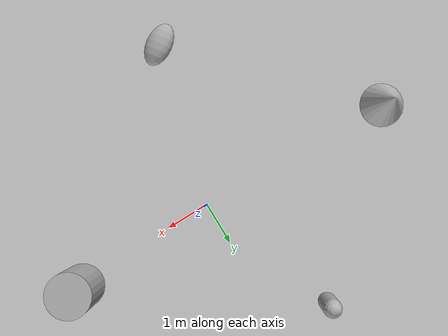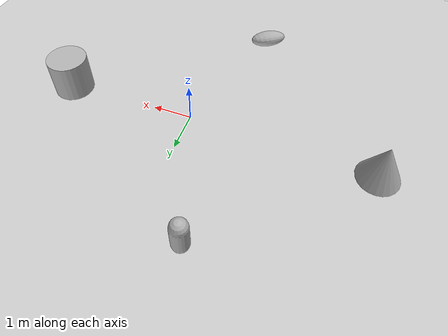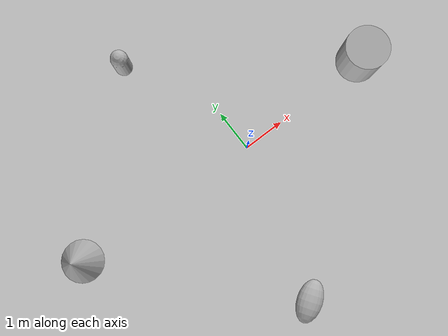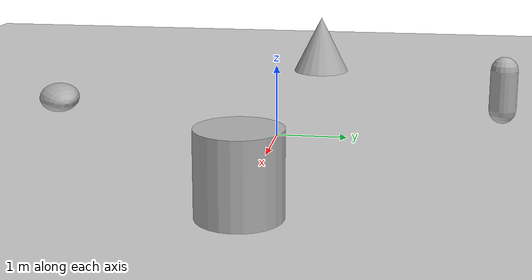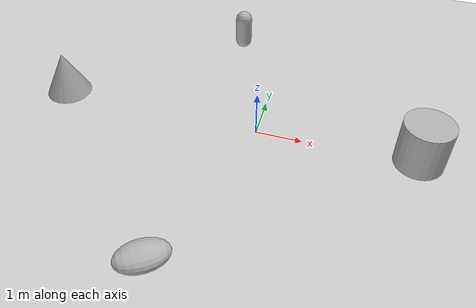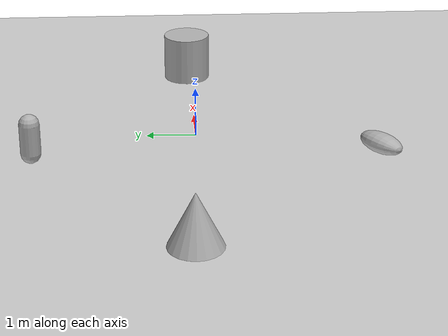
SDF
<sdf version='1.10'>
  <world name='my5_world'>
    <physics name='1ms' type='ignored'>
      <max_step_size>0.001</max_step_size>
      <real_time_factor>1</real_time_factor>
      <real_time_update_rate>1000</real_time_update_rate>
    </physics>
    <plugin name='gz::sim::systems::Physics' filename='gz-sim-physics-system'/>
    <plugin name='gz::sim::systems::UserCommands' filename='gz-sim-user-commands-system'/>
    <plugin name='gz::sim::systems::SceneBroadcaster' filename='gz-sim-scene-broadcaster-system'/>
    <plugin name='gz::sim::systems::Contact' filename='gz-sim-contact-system'/>
    <plugin filename="gz-sim-imu-system" name="gz::sim::systems::Imu" /> <!--  1. imu -->
    <plugin filename="gz-sim-sensors-system" name="gz::sim::systems::Sensors">  <!--  2. sensors -->
      <render_engine>ogre2</render_engine>
    </plugin>
    <gravity>0 0 -9.8000000000000007</gravity>
    <magnetic_field>5.5644999999999998e-06 2.2875799999999999e-05 -4.2388400000000002e-05</magnetic_field>
    <atmosphere type='adiabatic'/>
    <scene>
      <ambient>0.400000006 0.400000006 0.400000006 1</ambient>
      <background>0.699999988 0.699999988 0.699999988 1</background>
      <shadows>true</shadows>
    </scene>
    <model name='ground_plane'>
      <static>true</static>
      <link name='link'>
        <collision name='collision'>
          <geometry>
            <plane>
              <normal>0 0 1</normal>
              <size>100 100</size>
            </plane>
          </geometry>
          <surface>
            <friction>
              <ode/>
            </friction>
            <bounce/>
            <contact/>
          </surface>
        </collision>
        <visual name='visual'>
          <geometry>
            <plane>
              <normal>0 0 1</normal>
              <size>100 100</size>
            </plane>
          </geometry>
          <material>
            <ambient>0.800000012 0.800000012 0.800000012 1</ambient>
            <diffuse>0.800000012 0.800000012 0.800000012 1</diffuse>
            <specular>0.800000012 0.800000012 0.800000012 1</specular>
          </material>
        </visual>
        <pose>0 0 0 0 0 0</pose>
        <inertial>
          <pose>0 0 0 0 0 0</pose>
          <mass>1</mass>
          <inertia>
            <ixx>1</ixx>
            <ixy>0</ixy>
            <ixz>0</ixz>
            <iyy>1</iyy>
            <iyz>0</iyz>
            <izz>1</izz>
          </inertia>
        </inertial>
        <enable_wind>false</enable_wind>
      </link>
      <pose>0 0 0 0 0 0</pose>
      <self_collide>false</self_collide>
    </model>
    <model name='cylinder'>
      <pose>3.3284077780105878 0.06938875395417253 0.49999943207967634 2.838283847198818e-19 4.0581732691793793e-19 7.8515093676993988e-21</pose>
      <link name='cylinder_link'>
        <inertial>
          <inertia>
            <ixx>0.14580000000000001</ixx>
            <ixy>0</ixy>
            <ixz>0</ixz>
            <iyy>0.14580000000000001</iyy>
            <iyz>0</iyz>
            <izz>0.125</izz>
          </inertia>
          <mass>1</mass>
          <pose>0 0 0 0 0 0</pose>
        </inertial>
        <collision name='cylinder_collision'>
          <geometry>
            <cylinder>
              <radius>0.5</radius>
              <length>1</length>
            </cylinder>
          </geometry>
          <surface>
            <friction>
              <ode/>
            </friction>
            <bounce/>
            <contact/>
          </surface>
        </collision>
        <visual name='cylinder_visual'>
          <geometry>
            <cylinder>
              <radius>0.5</radius>
              <length>1</length>
            </cylinder>
          </geometry>
          <material>
            <ambient>0.300000012 0.300000012 0.300000012 1</ambient>
            <diffuse>0.699999988 0.699999988 0.699999988 1</diffuse>
            <specular>1 1 1 1</specular>
          </material>
        </visual>
        <pose>0 0 0 0 0 0</pose>
        <enable_wind>false</enable_wind>
      </link>
      <static>false</static>
      <self_collide>false</self_collide>
    </model>
    <model name='capsule'>
      <pose>-1.1464387664449793 3.2175351450713734 0.49999999980498194 0 0 0</pose>
      <link name='capsule_link'>
        <inertial>
          <inertia>
            <ixx>0.074153999999999998</ixx>
            <ixy>0</ixy>
            <ixz>0</ixz>
            <iyy>0.074153999999999998</iyy>
            <iyz>0</iyz>
            <izz>0.018769000000000001</izz>
          </inertia>
          <mass>1</mass>
          <pose>0 0 0 0 0 0</pose>
        </inertial>
        <collision name='capsule_collision'>
          <geometry>
            <capsule>
              <radius>0.20000000000000001</radius>
              <length>0.59999999999999998</length>
            </capsule>
          </geometry>
          <surface>
            <friction>
              <ode/>
            </friction>
            <bounce/>
            <contact/>
          </surface>
        </collision>
        <visual name='capsule_visual'>
          <geometry>
            <capsule>
              <radius>0.20000000000000001</radius>
              <length>0.59999999999999998</length>
            </capsule>
          </geometry>
          <material>
            <ambient>0.300000012 0.300000012 0.300000012 1</ambient>
            <diffuse>0.699999988 0.699999988 0.699999988 1</diffuse>
            <specular>1 1 1 1</specular>
          </material>
        </visual>
        <pose>0 0 0 0 0 0</pose>
        <enable_wind>false</enable_wind>
      </link>
      <static>false</static>
      <self_collide>false</self_collide>
    </model>
    <model name='ellipsoid'>
      <pose>-1.004815271166251 -3.5999956988924344 0.18666849132272503 -1.5707963271500789 1.3774892805477774 2.1710551201009629</pose>
      <link name='ellipsoid_link'>
        <inertial>
          <inertia>
            <ixx>0.068000000000000005</ixx>
            <ixy>0</ixy>
            <ixz>0</ixz>
            <iyy>0.058000000000000003</iyy>
            <iyz>0</iyz>
            <izz>0.025999999999999999</izz>
          </inertia>
          <mass>1</mass>
          <pose>0 0 0 0 0 0</pose>
        </inertial>
        <collision name='ellipsoid_collision'>
          <geometry>
            <ellipsoid>
              <radii>0.20000000000000001 0.29999999999999999 0.5</radii>
            </ellipsoid>
          </geometry>
          <surface>
            <friction>
              <ode/>
            </friction>
            <bounce/>
            <contact/>
          </surface>
        </collision>
        <visual name='ellipsoid_visual'>
          <geometry>
            <ellipsoid>
              <radii>0.20000000000000001 0.29999999999999999 0.5</radii>
            </ellipsoid>
          </geometry>
          <material>
            <ambient>0.300000012 0.300000012 0.300000012 1</ambient>
            <diffuse>0.699999988 0.699999988 0.699999988 1</diffuse>
            <specular>1 1 1 1</specular>
          </material>
        </visual>
        <pose>0 0 0 0 0 0</pose>
        <enable_wind>false</enable_wind>
      </link>
      <static>false</static>
      <self_collide>false</self_collide>
    </model>
    <model name='cone'>
      <pose>-4.5632648463352288 0.18970599768529739 0.4999999999393625 4.0324799784028934e-11 1.6174331190847541e-10 1.9726187107688897e-17</pose>
      <link name='cone_link'>
        <inertial>
          <inertia>
            <ixx>0.074999999999999997</ixx>
            <ixy>0</ixy>
            <ixz>0</ixz>
            <iyy>0.074999999999999997</iyy>
            <iyz>0</iyz>
            <izz>0.074999999999999997</izz>
          </inertia>
          <mass>1</mass>
          <pose>0 0 0 0 0 0</pose>
        </inertial>
        <collision name='cone_collision'>
          <geometry>
            <cone>
              <radius>0.5</radius>
              <length>1</length>
            </cone>
          </geometry>
          <surface>
            <friction>
              <ode/>
            </friction>
            <bounce/>
            <contact/>
          </surface>
        </collision>
        <visual name='cone_visual'>
          <geometry>
            <cone>
              <radius>0.5</radius>
              <length>1</length>
            </cone>
          </geometry>
          <material>
            <ambient>0.300000012 0.300000012 0.300000012 1</ambient>
            <diffuse>0.699999988 0.699999988 0.699999988 1</diffuse>
            <specular>1 1 1 1</specular>
          </material>
        </visual>
        <pose>0 0 0 0 0 0</pose>
        <enable_wind>false</enable_wind>
      </link>
      <static>false</static>
      <self_collide>false</self_collide>
    </model>

    <light name='sun' type='directional'>
      <pose>0 0 10 0 0 0</pose>
      <cast_shadows>true</cast_shadows>
      <intensity>1</intensity>
      <direction>-0.5 0.10000000000000001 -0.90000000000000002</direction>
      <diffuse>0.800000012 0.800000012 0.800000012 1</diffuse>
      <specular>0.200000003 0.200000003 0.200000003 1</specular>
      <attenuation>
        <range>1000</range>
        <linear>0.0099999997764825821</linear>
        <constant>0.89999997615814209</constant>
        <quadratic>0.0010000000474974513</quadratic>
      </attenuation>
      <spot>
        <inner_angle>0</inner_angle>
        <outer_angle>0</outer_angle>
        <falloff>0</falloff>
      </spot>
    </light>

  </world>
</sdf>
